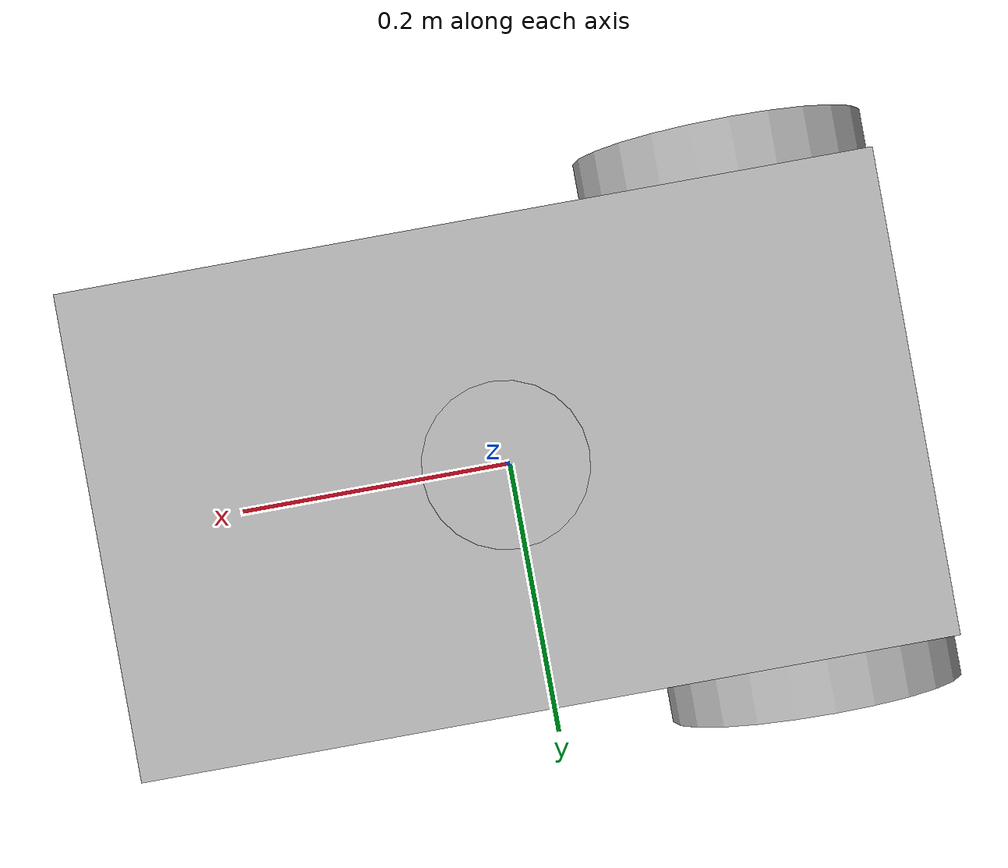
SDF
<sdf version='1.7'>
  <model name='mobile_bot'>
    <link name='base_footprint'>
      <inertial>
        <pose>0.049827 0 0.127301 0 -0 0</pose>
        <mass>7.225</mass>
        <inertia>
          <ixx>0.144501</ixx>
          <ixy>0</ixy>
          <ixz>0.0242284</ixz>
          <iyy>0.217905</iyy>
          <iyz>0</iyz>
          <izz>0.104451</izz>
        </inertia>
      </inertial>
      <collision name='base_footprint_fixed_joint_lump__base_link_collision'>
        <pose>0 0 0.15 0 -0 0</pose>
        <geometry>
          <box>
            <size>0.52 0.31 0.18</size>
          </box>
        </geometry>
      </collision>
      <collision name='base_footprint_fixed_joint_lump__front_caster_collision_1'>
        <pose>0.18 0 0.06 0 -0 0</pose>
        <geometry>
          <sphere>
            <radius>0.06</radius>
          </sphere>
        </geometry>
        <surface>
          <contact>
            <ode/>
          </contact>
          <friction>
            <ode>
              <mu>0</mu>
              <mu2>0</mu2>
            </ode>
          </friction>
        </surface>
      </collision>
      <collision name='base_footprint_fixed_joint_lump__imu_link_collision_2'>
        <pose>0 0 0.16 0 -0 0</pose>
        <geometry>
          <box>
            <size>0.1 0.1 0.1</size>
          </box>
        </geometry>
        <surface>
          <contact>
            <ode/>
          </contact>
          <friction>
            <ode/>
          </friction>
        </surface>
      </collision>
      <collision name='base_footprint_fixed_joint_lump__lidar_link_collision_3'>
        <pose>0 0 0.27 0 -0 0</pose>
        <geometry>
          <cylinder>
            <length>0.055</length>
            <radius>0.0508</radius>
          </cylinder>
        </geometry>
        <surface>
          <contact>
            <ode/>
          </contact>
          <friction>
            <ode/>
          </friction>
        </surface>
      </collision>
      <visual name='base_footprint_fixed_joint_lump__base_link_visual'>
        <pose>0 0 0.15 0 -0 0</pose>
        <geometry>
          <box>
            <size>0.52 0.31 0.18</size>
          </box>
        </geometry>
      </visual>
      <visual name='base_footprint_fixed_joint_lump__front_caster_visual_1'>
        <pose>0.18 0 0.06 0 -0 0</pose>
        <geometry>
          <sphere>
            <radius>0.06</radius>
          </sphere>
        </geometry>
      </visual>
      <visual name='base_footprint_fixed_joint_lump__imu_link_visual_2'>
        <pose>0 0 0.16 0 -0 0</pose>
        <geometry>
          <box>
            <size>0.1 0.1 0.1</size>
          </box>
        </geometry>
      </visual>
      <visual name='base_footprint_fixed_joint_lump__lidar_link_visual_3'>
        <pose>0 0 0.27 0 -0 0</pose>
        <geometry>
          <cylinder>
            <length>0.055</length>
            <radius>0.0508</radius>
          </cylinder>
        </geometry>
      </visual>
      <sensor name='imu_sensor' type='imu'>
        <plugin name='imu_plugin' filename='libgazebo_ros_imu_sensor.so'>
          <ros>
            <remapping>~/out:=imu</remapping>
          </ros>
          <initial_orientation_as_reference>0</initial_orientation_as_reference>
        </plugin>
        <always_on>1</always_on>
        <update_rate>100</update_rate>
        <visualize>1</visualize>
        <imu>
          <angular_velocity>
            <x>
              <noise type='gaussian'>
                <mean>0</mean>
                <stddev>0.0002</stddev>
                <bias_mean>7.5e-06</bias_mean>
                <bias_stddev>8e-07</bias_stddev>
              </noise>
            </x>
            <y>
              <noise type='gaussian'>
                <mean>0</mean>
                <stddev>0.0002</stddev>
                <bias_mean>7.5e-06</bias_mean>
                <bias_stddev>8e-07</bias_stddev>
              </noise>
            </y>
            <z>
              <noise type='gaussian'>
                <mean>0</mean>
                <stddev>0.0002</stddev>
                <bias_mean>7.5e-06</bias_mean>
                <bias_stddev>8e-07</bias_stddev>
              </noise>
            </z>
          </angular_velocity>
          <linear_acceleration>
            <x>
              <noise type='gaussian'>
                <mean>0</mean>
                <stddev>0.017</stddev>
                <bias_mean>0.1</bias_mean>
                <bias_stddev>0.001</bias_stddev>
              </noise>
            </x>
            <y>
              <noise type='gaussian'>
                <mean>0</mean>
                <stddev>0.017</stddev>
                <bias_mean>0.1</bias_mean>
                <bias_stddev>0.001</bias_stddev>
              </noise>
            </y>
            <z>
              <noise type='gaussian'>
                <mean>0</mean>
                <stddev>0.017</stddev>
                <bias_mean>0.1</bias_mean>
                <bias_stddev>0.001</bias_stddev>
              </noise>
            </z>
          </linear_acceleration>
        </imu>
        <pose>0 0 0.16 0 -0 0</pose>
      </sensor>
      <sensor name='lidar' type='ray'>
        <always_on>1</always_on>
        <visualize>1</visualize>
        <update_rate>5</update_rate>
        <ray>
          <scan>
            <horizontal>
              <samples>360</samples>
              <resolution>1</resolution>
              <min_angle>0</min_angle>
              <max_angle>6.28</max_angle>
            </horizontal>
          </scan>
          <range>
            <min>0.12</min>
            <max>12</max>
            <resolution>0.015</resolution>
          </range>
          <noise>
            <type>gaussian</type>
            <mean>0</mean>
            <stddev>0.01</stddev>
          </noise>
        </ray>
        <plugin name='scan' filename='libgazebo_ros_ray_sensor.so'>
          <ros>
            <remapping>~/out:=scan</remapping>
          </ros>
          <output_type>sensor_msgs/LaserScan</output_type>
          <frame_name>lidar_link</frame_name>
        </plugin>
        <pose>0 0 0.27 0 -0 0</pose>
      </sensor>
    </link>
    <joint name='drivewhl_l_joint' type='revolute'>
      <pose relative_to='base_footprint'>-0.18 0.175 0.1 0 -0 0</pose>
      <parent>base_footprint</parent>
      <child>drivewhl_l_link</child>
      <axis>
        <xyz>0 1 0</xyz>
        <limit>
          <lower>-1e+16</lower>
          <upper>1e+16</upper>
        </limit>
        <dynamics>
          <spring_reference>0</spring_reference>
          <spring_stiffness>0</spring_stiffness>
        </dynamics>
      </axis>
    </joint>
    <link name='drivewhl_l_link'>
      <pose relative_to='drivewhl_l_joint'>0 0 0 0 -0 0</pose>
      <inertial>
        <pose>0 0 0 1.5708 -0 0</pose>
        <mass>2</mass>
        <inertia>
          <ixx>0.00526667</ixx>
          <ixy>0</ixy>
          <ixz>0</ixz>
          <iyy>0.00526667</iyy>
          <iyz>0</iyz>
          <izz>0.01</izz>
        </inertia>
      </inertial>
      <collision name='drivewhl_l_link_collision'>
        <pose>0 0 0 1.5708 -0 0</pose>
        <geometry>
          <cylinder>
            <length>0.04</length>
            <radius>0.1</radius>
          </cylinder>
        </geometry>
      </collision>
      <visual name='drivewhl_l_link_visual'>
        <pose>0 0 0 1.5708 -0 0</pose>
        <geometry>
          <cylinder>
            <length>0.04</length>
            <radius>0.1</radius>
          </cylinder>
        </geometry>
      </visual>
    </link>
    <joint name='drivewhl_r_joint' type='revolute'>
      <pose relative_to='base_footprint'>-0.18 -0.175 0.1 0 -0 0</pose>
      <parent>base_footprint</parent>
      <child>drivewhl_r_link</child>
      <axis>
        <xyz>0 1 0</xyz>
        <limit>
          <lower>-1e+16</lower>
          <upper>1e+16</upper>
        </limit>
        <dynamics>
          <spring_reference>0</spring_reference>
          <spring_stiffness>0</spring_stiffness>
        </dynamics>
      </axis>
    </joint>
    <link name='drivewhl_r_link'>
      <pose relative_to='drivewhl_r_joint'>0 0 0 0 -0 0</pose>
      <inertial>
        <pose>0 0 0 1.5708 -0 0</pose>
        <mass>2</mass>
        <inertia>
          <ixx>0.00526667</ixx>
          <ixy>0</ixy>
          <ixz>0</ixz>
          <iyy>0.00526667</iyy>
          <iyz>0</iyz>
          <izz>0.01</izz>
        </inertia>
      </inertial>
      <collision name='drivewhl_r_link_collision'>
        <pose>0 0 0 1.5708 -0 0</pose>
        <geometry>
          <cylinder>
            <length>0.04</length>
            <radius>0.1</radius>
          </cylinder>
        </geometry>
      </collision>
      <visual name='drivewhl_r_link_visual'>
        <pose>0 0 0 1.5708 -0 0</pose>
        <geometry>
          <cylinder>
            <length>0.04</length>
            <radius>0.1</radius>
          </cylinder>
        </geometry>
      </visual>
    </link>
    <static>0</static>
    <plugin name='diff_drive' filename='libgazebo_ros_diff_drive.so'>
      <update_rate>30</update_rate>
      <left_joint>drivewhl_l_joint</left_joint>
      <right_joint>drivewhl_r_joint</right_joint>
      <wheel_separation>0.35</wheel_separation>
      <wheel_diameter>0.2</wheel_diameter>
      <max_wheel_torque>20</max_wheel_torque>
      <max_wheel_acceleration>1.0</max_wheel_acceleration>
      <command_topic>cmd_vel</command_topic>
      <publish_odom>1</publish_odom>
      <publish_odom_tf>0</publish_odom_tf>
      <publish_wheel_tf>1</publish_wheel_tf>
      <odometry_frame>odom</odometry_frame>
      <robot_base_frame>base_footprint</robot_base_frame>
    </plugin>
  </model>
</sdf>
